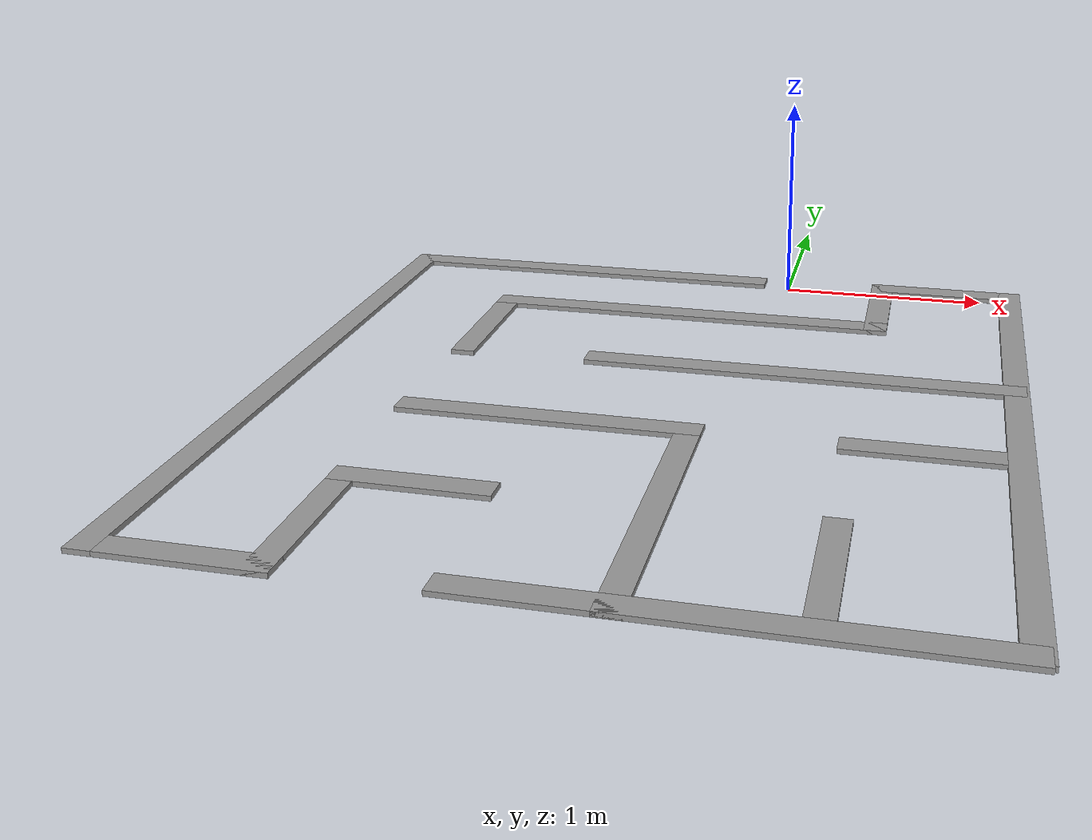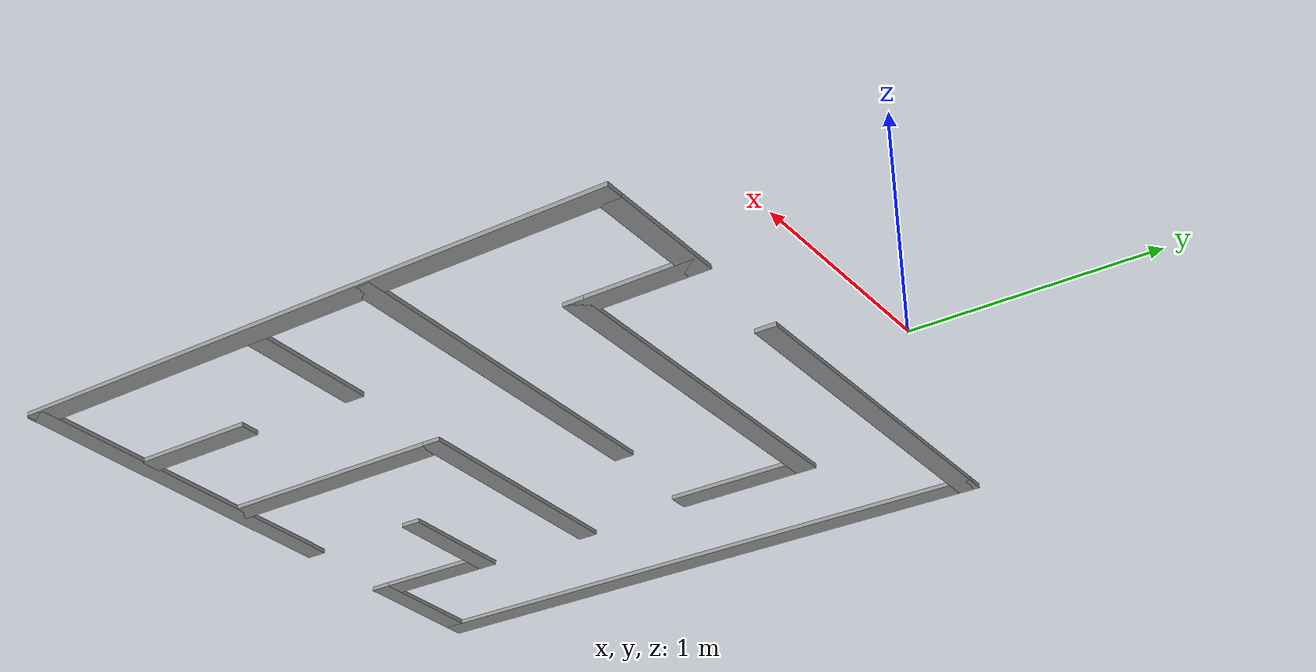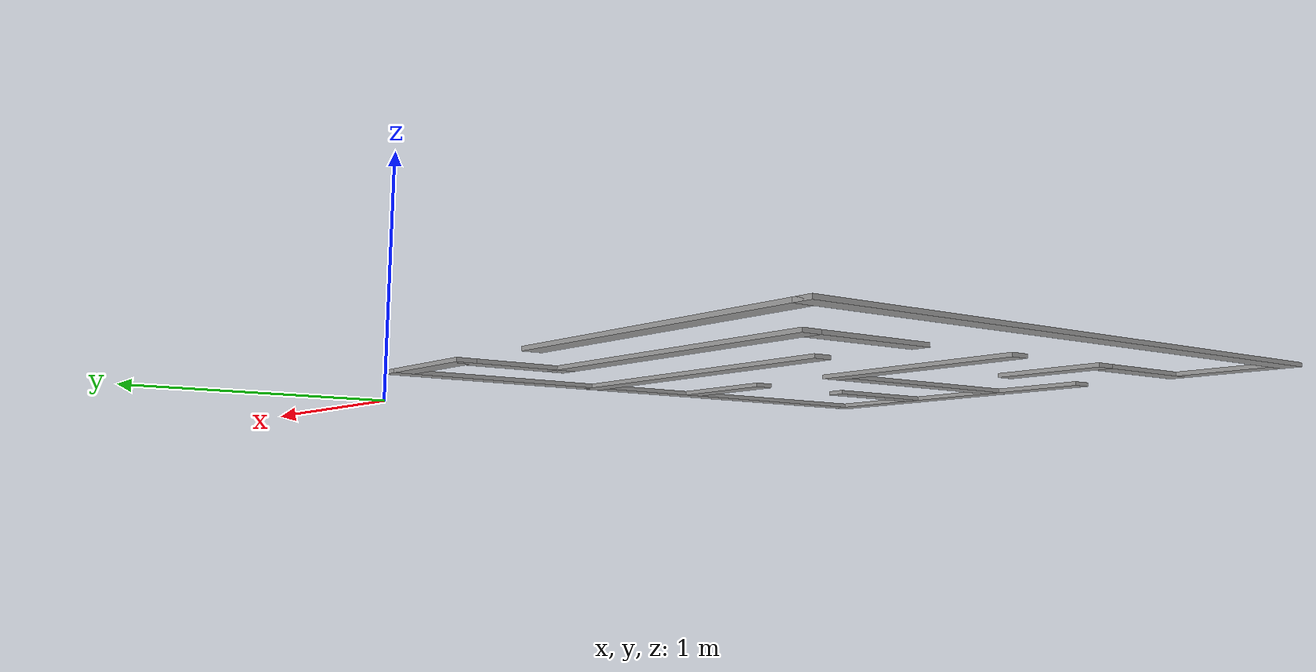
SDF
<?xml version='1.0'?>
<sdf version='1.6'>
  <model name='my_maze'>
    <pose frame=''>-0.34 -2.07 0 0 -0 0</pose>
    <link name='Wall_10'>
      <collision name='Wall_10_Collision'>
        <geometry>
          <box>
            <size>0.6 0.1 0.02</size>
          </box>
        </geometry>
        <pose frame=''>0 0 0.25 0 -0 0</pose>
      </collision>
      <visual name='Wall_10_Visual'>
        <pose frame=''>0 0 0.25 0 -0 0</pose>
        <geometry>
          <box>
            <size>0.6 0.1 0.02</size>
          </box>
        </geometry>
        <material>
          <script>
            <uri>file://media/materials/scripts/gazebo.material</uri>
            <name>Gazebo/Grey</name>
          </script>
          <ambient>1 1 1 1</ambient>
        </material>
        <meta>
          <layer>0</layer>
        </meta>
      </visual>
      <pose frame=''>0.86 1.19 0 0 -0 -1.5708</pose>
    </link>
    <link name='Wall_12'>
      <collision name='Wall_12_Collision'>
        <geometry>
          <box>
            <size>0.6 0.1 0.02</size>
          </box>
        </geometry>
        <pose frame=''>0 0 0.25 0 -0 0</pose>
      </collision>
      <visual name='Wall_12_Visual'>
        <pose frame=''>0 0 0.25 0 -0 0</pose>
        <geometry>
          <box>
            <size>0.6 0.1 0.02</size>
          </box>
        </geometry>
        <material>
          <script>
            <uri>file://media/materials/scripts/gazebo.material</uri>
            <name>Gazebo/Grey</name>
          </script>
          <ambient>1 1 1 1</ambient>
        </material>
        <meta>
          <layer>0</layer>
        </meta>
      </visual>
      <pose frame=''>-0.84 0.59 0 0 -0 -1.5708</pose>
    </link>
    <link name='Wall_14'>
      <collision name='Wall_14_Collision'>
        <geometry>
          <box>
            <size>1.2 0.1 0.02</size>
          </box>
        </geometry>
        <pose frame=''>0 0 0.25 0 -0 0</pose>
      </collision>
      <visual name='Wall_14_Visual'>
        <pose frame=''>0 0 0.25 0 -0 0</pose>
        <geometry>
          <box>
            <size>1.2 0.1 0.02</size>
          </box>
        </geometry>
        <material>
          <script>
            <uri>file://media/materials/scripts/gazebo.material</uri>
            <name>Gazebo/Grey</name>
          </script>
          <ambient>1 1 1 1</ambient>
        </material>
        <meta>
          <layer>0</layer>
        </meta>
      </visual>
      <pose frame=''>-0.3 -0.26 0 0 -0 0</pose>
    </link>
    <link name='Wall_17'>
      <collision name='Wall_17_Collision'>
        <geometry>
          <box>
            <size>1.8 0.1 0.02</size>
          </box>
        </geometry>
        <pose frame=''>0 0 0.25 0 -0 0</pose>
      </collision>
      <visual name='Wall_17_Visual'>
        <pose frame=''>0 0 0.25 0 -0 0</pose>
        <geometry>
          <box>
            <size>1.8 0.1 0.02</size>
          </box>
        </geometry>
        <material>
          <script>
            <uri>file://media/materials/scripts/gazebo.material</uri>
            <name>Gazebo/Grey</name>
          </script>
          <ambient>1 1 1 1</ambient>
        </material>
        <meta>
          <layer>0</layer>
        </meta>
      </visual>
      <pose frame=''>0.01 0.94 0 0 -0 0</pose>
    </link>
    <link name='Wall_19'>
      <collision name='Wall_19_Collision'>
        <geometry>
          <box>
            <size>0.6 0.1 0.02</size>
          </box>
        </geometry>
        <pose frame=''>0 0 0.25 0 -0 0</pose>
      </collision>
      <visual name='Wall_19_Visual'>
        <pose frame=''>0 0 0.25 0 -0 0</pose>
        <geometry>
          <box>
            <size>0.6 0.1 0.02</size>
          </box>
        </geometry>
        <material>
          <script>
            <uri>file://media/materials/scripts/gazebo.material</uri>
            <name>Gazebo/Grey</name>
          </script>
          <ambient>1 1 1 1</ambient>
        </material>
        <meta>
          <layer>0</layer>
        </meta>
      </visual>
      <pose frame=''>1.11 1.46 0 0 -0 0</pose>
    </link>
    <link name='Wall_2'>
      <collision name='Wall_2_Collision'>
        <geometry>
          <box>
            <size>0.6 0.1 0.02</size>
          </box>
        </geometry>
        <pose frame=''>0 0 0.25 0 -0 0</pose>
      </collision>
      <visual name='Wall_2_Visual'>
        <pose frame=''>0 0 0.25 0 -0 0</pose>
        <geometry>
          <box>
            <size>0.6 0.1 0.02</size>
          </box>
        </geometry>
        <material>
          <script>
            <uri>file://media/materials/scripts/gazebo.material</uri>
            <name>Gazebo/Grey</name>
          </script>
          <ambient>1 1 1 1</ambient>
        </material>
        <meta>
          <layer>0</layer>
        </meta>
      </visual>
      <pose frame=''>-1.1 -1.46 0 0 -0 0</pose>
    </link>
    <link name='Wall_21'>
      <collision name='Wall_21_Collision'>
        <geometry>
          <box>
            <size>1.2 0.1 0.02</size>
          </box>
        </geometry>
        <pose frame=''>0 0 0.25 0 -0 0</pose>
      </collision>
      <visual name='Wall_21_Visual'>
        <pose frame=''>0 0 0.25 0 -0 0</pose>
        <geometry>
          <box>
            <size>1.2 0.1 0.02</size>
          </box>
        </geometry>
        <material>
          <script>
            <uri>file://media/materials/scripts/gazebo.material</uri>
            <name>Gazebo/Grey</name>
          </script>
          <ambient>1 1 1 1</ambient>
        </material>
        <meta>
          <layer>0</layer>
        </meta>
      </visual>
      <pose frame=''>0.25 -0.9 0 0 -0 -1.5708</pose>
    </link>
    <link name='Wall_23'>
      <collision name='Wall_23_Collision'>
        <geometry>
          <box>
            <size>1.8 0.1 0.02</size>
          </box>
        </geometry>
        <pose frame=''>0 0 0.25 0 -0 0</pose>
      </collision>
      <visual name='Wall_23_Visual'>
        <pose frame=''>0 0 0.25 0 -0 0</pose>
        <geometry>
          <box>
            <size>1.8 0.1 0.02</size>
          </box>
        </geometry>
        <material>
          <script>
            <uri>file://media/materials/scripts/gazebo.material</uri>
            <name>Gazebo/Grey</name>
          </script>
          <ambient>1 1 1 1</ambient>
        </material>
        <meta>
          <layer>0</layer>
        </meta>
      </visual>
      <pose frame=''>0.59 -1.45 0 0 -0 0</pose>
    </link>
    <link name='Wall_25'>
      <collision name='Wall_25_Collision'>
        <geometry>
          <box>
            <size>1.8 0.1 0.02</size>
          </box>
        </geometry>
        <pose frame=''>0 0 0.25 0 -0 0</pose>
      </collision>
      <visual name='Wall_25_Visual'>
        <pose frame=''>0 0 0.25 0 -0 0</pose>
        <geometry>
          <box>
            <size>1.8 0.1 0.02</size>
          </box>
        </geometry>
        <material>
          <script>
            <uri>file://media/materials/scripts/gazebo.material</uri>
            <name>Gazebo/Grey</name>
          </script>
          <ambient>1 1 1 1</ambient>
        </material>
        <meta>
          <layer>0</layer>
        </meta>
      </visual>
      <pose frame=''>0.59 0.35 0 0 -0 0</pose>
    </link>
    <link name='Wall_27'>
      <collision name='Wall_27_Collision'>
        <geometry>
          <box>
            <size>3 0.1 0.5</size>
          </box>
        </geometry>
        <pose frame=''>0 0 0.25 0 -0 0</pose>
      </collision>
      <visual name='Wall_27_Visual'>
        <pose frame=''>0 0 0.25 0 -0 0</pose>
        <geometry>
          <box>
            <size>3 0.1 0.02</size>
          </box>
        </geometry>
        <material>
          <script>
            <uri>file://media/materials/scripts/gazebo.material</uri>
            <name>Gazebo/Grey</name>
          </script>
          <ambient>1 1 1 1</ambient>
        </material>
        <meta>
          <layer>0</layer>
        </meta>
      </visual>
      <pose frame=''>-1.45 -0.01 0 0 -0 1.5708</pose>
    </link>
    <link name='Wall_29'>
      <collision name='Wall_29_Collision'>
        <geometry>
          <box>
            <size>0.6 0.1 0.02</size>
          </box>
        </geometry>
        <pose frame=''>0 0 0.25 0 -0 0</pose>
      </collision>
      <visual name='Wall_29_Visual'>
        <pose frame=''>0 0 0.25 0 -0 0</pose>
        <geometry>
          <box>
            <size>0.6 0.1 0.02</size>
          </box>
        </geometry>
        <material>
          <script>
            <uri>file://media/materials/scripts/gazebo.material</uri>
            <name>Gazebo/Grey</name>
          </script>
          <ambient>1 1 1 1</ambient>
        </material>
        <meta>
          <layer>0</layer>
        </meta>
      </visual>
      <pose frame=''>0.85 -1.11 0 0 -0 -1.5708</pose>
    </link>
    <link name='Wall_31'>
      <collision name='Wall_31_Collision'>
        <geometry>
          <box>
            <size>0.6 0.1 0.5</size>
          </box>
        </geometry>
        <pose frame=''>0 0 0.25 0 -0 0</pose>
      </collision>
      <visual name='Wall_31_Visual'>
        <pose frame=''>0 0 0.25 0 -0 0</pose>
        <geometry>
          <box>
            <size>0.6 0.1 0.02</size>
          </box>
        </geometry>
        <material>
          <script>
            <uri>file://media/materials/scripts/gazebo.material</uri>
            <name>Gazebo/Grey</name>
          </script>
          <ambient>1 1 1 1</ambient>
        </material>
        <meta>
          <layer>0</layer>
        </meta>
      </visual>
      <pose frame=''>-0.85 -1.21 0 0 -0 -1.5708</pose>
    </link>
    <link name='Wall_33'>
      <collision name='Wall_33_Collision'>
        <geometry>
          <box>
            <size>0.6 0.1 0.02</size>
          </box>
        </geometry>
        <pose frame=''>0 0 0.25 0 -0 0</pose>
      </collision>
      <visual name='Wall_33_Visual'>
        <pose frame=''>0 0 0.25 0 -0 0</pose>
        <geometry>
          <box>
            <size>0.6 0.1 0.02</size>
          </box>
        </geometry>
        <material>
          <script>
            <uri>file://media/materials/scripts/gazebo.material</uri>
            <name>Gazebo/Grey</name>
          </script>
          <ambient>1 1 1 1</ambient>
        </material>
        <meta>
          <layer>0</layer>
        </meta>
      </visual>
      <pose frame=''>1.1 -0.26 0 0 -0 0</pose>
    </link>
    <link name='Wall_35'>
      <collision name='Wall_35_Collision'>
        <geometry>
          <box>
            <size>0.6 0.1 0.02</size>
          </box>
        </geometry>
        <pose frame=''>0 0 0.25 0 -0 0</pose>
      </collision>
      <visual name='Wall_35_Visual'>
        <pose frame=''>0 0 0.25 0 -0 0</pose>
        <geometry>
          <box>
            <size>0.6 0.1 0.02</size>
          </box>
        </geometry>
        <material>
          <script>
            <uri>file://media/materials/scripts/gazebo.material</uri>
            <name>Gazebo/Grey</name>
          </script>
          <ambient>1 1 1 1</ambient>
        </material>
        <meta>
          <layer>0</layer>
        </meta>
      </visual>
      <pose frame=''>-0.6 -0.86 0 0 -0 0</pose>
    </link>
    <link name='Wall_6'>
      <collision name='Wall_6_Collision'>
        <geometry>
          <box>
            <size>1.8 0.1 0.02</size>
          </box>
        </geometry>
        <pose frame=''>0 0 0.25 0 -0 0</pose>
      </collision>
      <visual name='Wall_6_Visual'>
        <pose frame=''>0 0 0.25 0 -0 0</pose>
        <geometry>
          <box>
            <size>1.8 0.1 0.02</size>
          </box>
        </geometry>
        <material>
          <script>
            <uri>file://media/materials/scripts/gazebo.material</uri>
            <name>Gazebo/Grey</name>
          </script>
          <ambient>1 1 1 1</ambient>
        </material>
        <meta>
          <layer>0</layer>
        </meta>
      </visual>
      <pose frame=''>-0.6 1.44 0 0 -0 0</pose>
    </link>
    <link name='Wall_8'>
      <collision name='Wall_8_Collision'>
        <geometry>
          <box>
            <size>3 0.1 0.02</size>
          </box>
        </geometry>
        <pose frame=''>0 0 0.25 0 -0 0</pose>
      </collision>
      <visual name='Wall_8_Visual'>
        <pose frame=''>0 0 0.25 0 -0 0</pose>
        <geometry>
          <box>
            <size>3 0.1 0.02</size>
          </box>
        </geometry>
        <material>
          <script>
            <uri>file://media/materials/scripts/gazebo.material</uri>
            <name>Gazebo/Grey</name>
          </script>
          <ambient>1 1 1 1</ambient>
        </material>
        <meta>
          <layer>0</layer>
        </meta>
      </visual>
      <pose frame=''>1.45 0.01 0 0 -0 1.5708</pose>
    </link>
    <static>1</static>
  </model>
</sdf>
